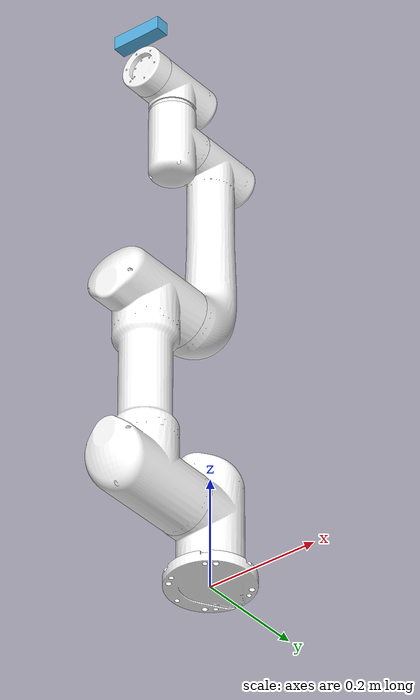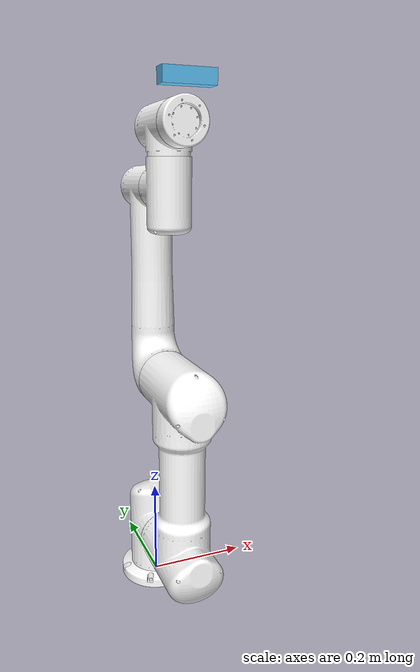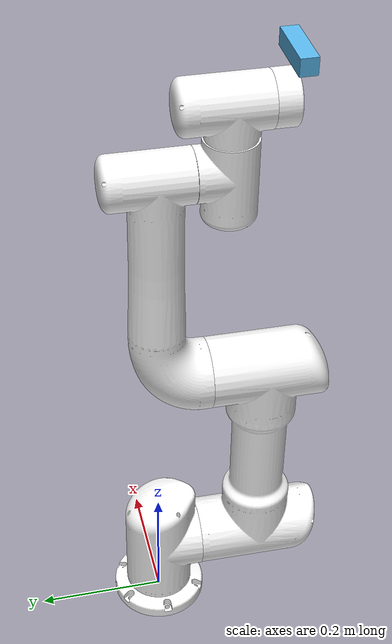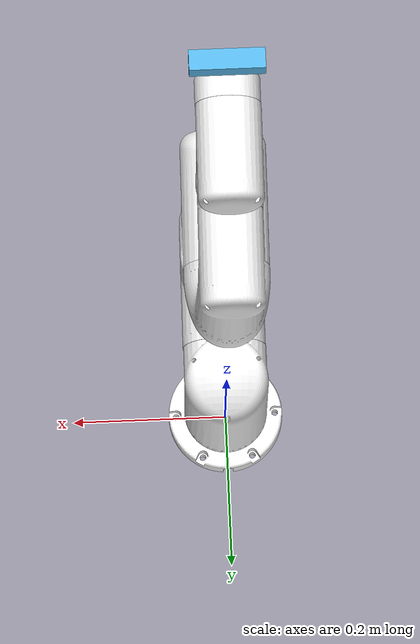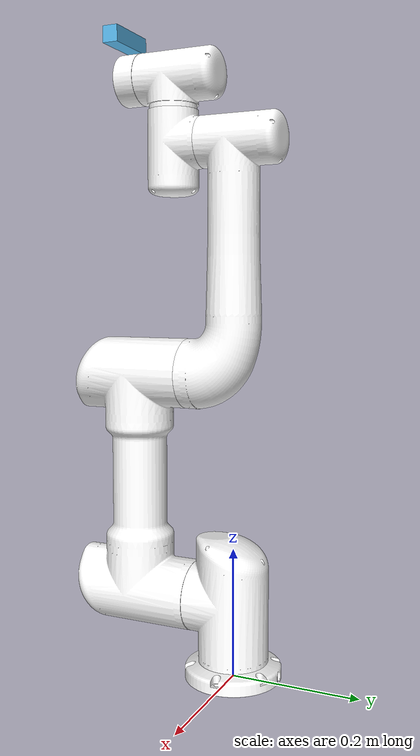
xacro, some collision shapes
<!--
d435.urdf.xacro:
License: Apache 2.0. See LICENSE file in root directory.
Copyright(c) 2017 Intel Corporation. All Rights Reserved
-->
<?xml version="1.0" encoding="utf-8"?>
<robot name="probot_c800"  xmlns:xacro="http://ros.org/wiki/xacro">
  <xacro:property name="M_PI" value="3.1415926536"/>
  <xacro:include filename="$(find probot_description)/urdf/PROBOT_C800/sensors/d435.urdf.xacro" />
  <xacro:include filename="$(find probot_description)/urdf/PROBOT_C800/sensors/realsense.gazebo.xacro"/>

  <link
    name="base_link">
    <inertial>
      <origin
        xyz="5.147E-06 -0.00046785 0.015896"
        rpy="0 0 0" />
      <mass
        value="0.468" />
      <inertia
        ixx="0.00059509"
        ixy="-1.4288E-07"
        ixz="2.849E-08"
        iyy="0.00060823"
        iyz="-2.5808E-06"
        izz="0.0011221" />
    </inertial>
    <visual>
      <origin
        xyz="0 0 0"
        rpy="0 0 0" />
      <geometry>
        <mesh
          filename="package://probot_description/meshes/PROBOT_C800/base_link.STL" />
      </geometry>
      <material
        name="">
        <color
          rgba="1 1 1 1" />
      </material>
    </visual>
    <collision>
      <origin
        xyz="0 0 0"
        rpy="0 0 0" />
      <geometry>
        <mesh
          filename="package://probot_description/meshes/PROBOT_C800/base_link.STL" />
      </geometry>
    </collision>
  </link>
  <link
    name="link_1">
    <inertial>
      <origin
        xyz="0.00965262287162855 0.000106882257560006 -0.0934671109139962"
        rpy="0 0 0" />
      <mass
        value="1.88922089243828" />
      <inertia
        ixx="0.00408865798627214"
        ixy="-5.96603151037548E-06"
        ixz="0.000373851909212829"
        iyy="0.00462847786874606"
        iyz="4.12539063355566E-06"
        izz="0.00336611341313754" />
    </inertial>
    <visual>
      <origin
        xyz="0 0 0"
        rpy="0 0 0" />
      <geometry>
        <mesh
          filename="package://probot_description/meshes/PROBOT_C800/link_1.STL" />
      </geometry>
      <material
        name="">
        <color
          rgba="1 1 1 1" />
      </material>
    </visual>
    <collision>
      <origin
        xyz="0 0 0"
        rpy="0 0 0" />
      <geometry>
        <mesh
          filename="package://probot_description/meshes/PROBOT_C800/link_1.STL" />
      </geometry>
    </collision>
  </link>
  <joint
    name="joint_1"
    type="revolute">
    <origin
      xyz="0 0 0.02685"
      rpy="${M_PI} 0 ${-M_PI/2}" />
    <parent
      link="base_link" />
    <child
      link="link_1" />
    <axis
      xyz="0 0 1" />
    <limit
      lower="-3"
      upper="3"
      effort="100"
      velocity="3" />
  </joint>
  <link
    name="link_2">
    <inertial>
      <origin
        xyz="0.0934750581217414 0.00103234502270023 -0.173879790200934"
        rpy="0 0 0" />
      <mass
        value="5.06786745806782" />
      <inertia
        ixx="0.0121779083694365"
        ixy="-2.80230067509799E-05"
        ixz="9.97468437098008E-10"
        iyy="0.0147149627140393"
        iyz="-8.00783289230579E-08"
        izz="0.00958972857755924" />
    </inertial>
    <visual>
      <origin
        xyz="0 0 0"
        rpy="0 0 0" />
      <geometry>
        <mesh
          filename="package://probot_description/meshes/PROBOT_C800/link_2.STL" />
      </geometry>
      <material
        name="">
        <color
          rgba="1 1 1 1" />
      </material>
    </visual>
    <collision>
      <origin
        xyz="0 0 0"
        rpy="0 0 0" />
      <geometry>
        <mesh
          filename="package://probot_description/meshes/PROBOT_C800/link_2.STL" />
      </geometry>
    </collision>
  </link>
  <joint
    name="joint_2"
    type="revolute">
    <origin
      xyz="0.06985 0.0 -0.09285"
      rpy="0 0 0" />
    <parent
      link="link_1" />
    <child
      link="link_2" />
    <axis
      xyz="1 0 0" />
    <limit
      lower="-3"
      upper="3"
      effort="100"
      velocity="3" />
  </joint>
  <link
    name="link_3">
    <inertial>
      <origin
        xyz="-0.0687118174770173 -0.000754378183272216 -0.185631913469604"
        rpy="0 0 0" />
      <mass
        value="2.47377025000813" />
      <inertia
        ixx="0.00663956391078891"
        ixy="-2.71624301134228E-06"
        ixz="-0.000251322412392862"
        iyy="0.00692970951632879"
        iyz="-2.96259292810681E-06"
        izz="0.00245054455125903" />
    </inertial>
    <visual>
      <origin
        xyz="0 0 0"
        rpy="0 0 0" />
      <geometry>
        <mesh
          filename="package://probot_description/meshes/PROBOT_C800/link_3.STL" />
      </geometry>
      <material
        name="">
        <color
          rgba="1 1 1 1" />
      </material>
    </visual>
    <collision>
      <origin
        xyz="0 0 0"
        rpy="0 0 0" />
      <geometry>
        <mesh
          filename="package://probot_description/meshes/PROBOT_C800/link_3.STL" />
      </geometry>
    </collision>
  </link>
  <joint
    name="joint_3"
    type="revolute">
    <origin
      xyz="0 0 -0.3484"
      rpy="0 0 0" />
    <parent
      link="link_2" />
    <child
      link="link_3" />
    <axis
      xyz="1 0 0" />
    <limit
      lower="-3"
      upper="3"
      effort="100"
      velocity="3" />
  </joint>
  <link
    name="link_4">
    <inertial>
      <origin
        xyz="1.42558891115018E-07 0.011406732342618 -0.041125104941559"
        rpy="0 0 0" />
      <mass
        value="0.695111684391091" />
      <inertia
        ixx="0.000790631110631163"
        ixy="1.14094804039212E-10"
        ixz="8.72089830829354E-10"
        iyy="0.000625170480739091"
        iyz="3.28279382060779E-12"
        izz="0.000711240090250443" />
    </inertial>
    <visual>
      <origin
        xyz="0 0 0"
        rpy="0 0 0" />
      <geometry>
        <mesh
          filename="package://probot_description/meshes/PROBOT_C800/link_4.STL" />
      </geometry>
      <material
        name="">
        <color
          rgba="1 1 1 1" />
      </material>
    </visual>
    <collision>
      <origin
        xyz="0 0 0"
        rpy="0 0 0" />
      <geometry>
        <mesh
          filename="package://probot_description/meshes/PROBOT_C800/link_4.STL" />
      </geometry>
    </collision>
  </link>
  <joint
    name="joint_4"
    type="revolute">
    <origin
      xyz="-0.01605 0.0 -0.3495"
      rpy="${M_PI/2} 0 ${-M_PI/2}" />
    <parent
      link="link_3" />
    <child
      link="link_4" />
    <axis
      xyz="0 0 1" />
    <limit
      lower="-3"
      upper="3"
      effort="100"
      velocity="3" />
  </joint>
  <link
    name="link_5">
    <inertial>
      <origin
        xyz="-0.0114844563632815 -0.000126834206554931 -0.0414064058202409"
        rpy="0 0 0" />
      <mass
        value="0.690365366275584" />
      <inertia
        ixx="0.000621780696658123"
        ixy="-1.82724165631366E-06"
        ixz="6.97185313514566E-12"
        iyy="0.000787203265227848"
        iyz="-1.46862677962704E-10"
        izz="0.000704470727358158" />
    </inertial>
    <visual>
      <origin
        xyz="0 0 0"
        rpy="0 0 0" />
      <geometry>
        <mesh
          filename="package://probot_description/meshes/PROBOT_C800/link_5.STL" />
      </geometry>
      <material
        name="">
        <color
          rgba="1 1 1 1" />
      </material>
    </visual>
    <collision>
      <origin
        xyz="0 0 0"
        rpy="0 0 0" />
      <geometry>
        <mesh
          filename="package://probot_description/meshes/PROBOT_C800/link_5.STL" />
      </geometry>
    </collision>
  </link>
  <joint
    name="joint_5"
    type="revolute">
    <origin
      xyz="0 -0.0541 -0.0464"
      rpy="${-M_PI/2} ${M_PI/2} 0" />
    <parent
      link="link_4" />
    <child
      link="link_5" />
    <axis
      xyz="0 0 1" />
    <limit
      lower="-3"
      upper="3"
      effort="100"
      velocity="3" />
  </joint>
  <link
    name="link_6">
    <inertial>
      <origin
        xyz="0.014970141556978 0.000165329680690855 5.42196176844811E-09"
        rpy="0 0 0" />
      <mass
        value="0.138913647701422" />
      <inertia
        ixx="0.000114113868764739"
        ixy="5.037705828088E-07"
        ixz="1.27793184454972E-11"
        iyy="6.850486862405E-05"
        iyz="-1.06418612094514E-09"
        izz="6.85002551423014E-05" />
    </inertial>
    <visual>
      <origin
        xyz="0 0 0"
        rpy="0 0 0" />
      <geometry>
        <mesh
          filename="package://probot_description/meshes/PROBOT_C800/link_6.STL" />
      </geometry>
      <material
        name="">
        <color
          rgba="1 1 1 1" />
      </material>
    </visual>
    <collision>
      <origin
        xyz="0 0 0"
        rpy="0 0 0" />
      <geometry>
        <mesh
          filename="package://probot_description/meshes/PROBOT_C800/link_6.STL" />
      </geometry>
    </collision>
  </link>
  <joint
    name="joint_6"
    type="revolute">
    <origin
      xyz="0.0501 0 -0.0464"
      rpy="0 0 0" />
    <parent
      link="link_5" />
    <child
      link="link_6" />
    <axis
      xyz="-1 0 0" />
    <limit
      lower="-3"
      upper="3"
      effort="100"
      velocity="3" />
  </joint>

  <link name="tool0"/>
  <joint name="joint_tool0" type="fixed">
    <origin xyz="0.03328 0 0" rpy="${-M_PI} 0 ${-M_PI/2}" />
    <parent link="link_6" />
    <child link="tool0" />
  </joint>

  <sensor_d435 parent="tool0">
    <origin xyz="0 0 0.05" rpy="0 0 ${-M_PI/2}"/>
  </sensor_d435>

  <!-- Transmissions for ROS Control -->
  <xacro:macro name="transmission_block" params="joint_name">
    <transmission name="tran1">
      <type>transmission_interface/SimpleTransmission</type>
      <joint name="${joint_name}">
        <hardwareInterface>hardware_interface/PositionJointInterface</hardwareInterface>
      </joint>
      <actuator name="motor1">
        <hardwareInterface>hardware_interface/PositionJointInterface</hardwareInterface>
        <mechanicalReduction>1</mechanicalReduction>
      </actuator>
    </transmission>
  </xacro:macro>

  <xacro:transmission_block joint_name="joint_1"/>
  <xacro:transmission_block joint_name="joint_2"/>
  <xacro:transmission_block joint_name="joint_3"/>
  <xacro:transmission_block joint_name="joint_4"/>
  <xacro:transmission_block joint_name="joint_5"/>
  <xacro:transmission_block joint_name="joint_6"/>

  <!-- ros_control plugin -->
  <gazebo>
    <plugin name="gazebo_ros_control" filename="libgazebo_ros_control.so">
      <robotNamespace>/</robotNamespace>
      <robotSimType>gazebo_ros_control/DefaultRobotHWSim</robotSimType>
      <legacyModeNS>true</legacyModeNS>
    </plugin>
  </gazebo>
</robot>

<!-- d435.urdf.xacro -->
<robot name="sensor_d435" xmlns:xacro="http://ros.org/wiki/xacro">
  <!-- Includes -->
  <material name="aluminum">
    <color rgba="0.5 0.5 0.5 1"/>
  </material>

  <xacro:macro name="sensor_d435" params="parent *origin name:=camera">
    <xacro:property name="M_PI" value="3.1415926535897931" />

    <!-- The following values are approximate, and the camera node
     publishing TF values with actual calibrated camera extrinsic values -->
    <xacro:property name="d435_cam_depth_to_infra1_offset" value="0.0"/>
    <xacro:property name="d435_cam_depth_to_infra2_offset" value="-0.050"/>
    <xacro:property name="d435_cam_depth_to_color_offset" value="0.015"/>

    <!-- The following values model the aluminum peripherial case for the
  	D435 camera, with the camera joint represented by the actual
  	peripherial camera tripod mount -->
    <xacro:property name="d435_cam_width" value="0.090"/>
    <xacro:property name="d435_cam_height" value="0.025"/>
    <xacro:property name="d435_cam_depth" value="0.02505"/>
    <xacro:property name="d435_cam_mount_from_center_offset" value="0.0149"/>

    <!-- The following offset is relative the the physical D435 camera peripherial
  	camera tripod mount -->
    <xacro:property name="d435_cam_depth_px" value="${d435_cam_mount_from_center_offset}"/>
    <xacro:property name="d435_cam_depth_py" value="0.0175"/>
    <xacro:property name="d435_cam_depth_pz" value="${d435_cam_height/2}"/>

    <!-- camera body, with origin at bottom screw mount -->
    <joint name="${name}_joint" type="fixed">
      <xacro:insert_block name="origin" />
      <parent link="${parent}"/>
      <child link="${name}_bottom_screw_frame" />
    </joint>
    <link name="${name}_bottom_screw_frame"/>

    <joint name="${name}_link_joint" type="fixed">
      <origin xyz="0 ${d435_cam_depth_py} ${d435_cam_depth_pz}" rpy="0 0 0"/>
      <parent link="${name}_bottom_screw_frame"/>
      <child link="${name}_link" />
    </joint>

    <link name="${name}_link">
      <visual>
        <origin xyz="${d435_cam_mount_from_center_offset} ${-d435_cam_depth_py} 0" rpy="${M_PI/2} 0 ${M_PI/2}"/>
        <geometry>
	        <mesh filename="package://probot_description/meshes/PROBOT_C800/sensors/d435.dae" />
        </geometry>
      </visual>
      <collision>
        <origin xyz="0 ${-d435_cam_depth_py} 0" rpy="0 0 0"/>
        <geometry>
          <box size="${d435_cam_depth} ${d435_cam_width} ${d435_cam_height}"/>
        </geometry>
      </collision>
      <inertial>
        <!-- The following are not reliable values, and should not be used for modeling -->
        <mass value="0.564" />
        <origin xyz="0 0 0" />
        <inertia ixx="0.003881243" ixy="0.0" ixz="0.0" iyy="0.000498940" iyz="0.0" izz="0.003879257" />
      </inertial>
    </link>

    <!-- Use the nominal extrinsics between camera frames if the calibrated extrinsics aren't being published. e.g. running the device in simulation  -->

      <!-- camera depth joints and links -->
      <joint name="${name}_depth_joint" type="fixed">
        <origin xyz="0 0 0" rpy="0 0 0"/>
        <parent link="${name}_link"/>
        <child link="${name}_depth_frame" />
      </joint>
      <link name="${name}_depth_frame"/>

      <joint name="${name}_depth_optical_joint" type="fixed">
        <origin xyz="0 0 0" rpy="${-M_PI/2} 0 ${-M_PI/2}" />
        <parent link="${name}_depth_frame" />
        <child link="${name}_depth_optical_frame" />
      </joint>
      <link name="${name}_depth_optical_frame"/>

      <!-- camera left IR joints and links -->
      <joint name="${name}_infra1_joint" type="fixed">
        <origin xyz="0 ${d435_cam_depth_to_infra1_offset} 0" rpy="0 0 0" />
        <parent link="${name}_link" />
        <child link="${name}_infra1_frame" />
      </joint>
      <link name="${name}_infra1_frame"/>

      <joint name="${name}_infra1_optical_joint" type="fixed">
        <origin xyz="0 0 0" rpy="${-M_PI/2} 0 ${-M_PI/2}" />
        <parent link="${name}_infra1_frame" />
        <child link="${name}_infra1_optical_frame" />
      </joint>
      <link name="${name}_infra1_optical_frame"/>

      <!-- camera right IR joints and links -->
      <joint name="${name}_infra2_joint" type="fixed">
        <origin xyz="0 ${d435_cam_depth_to_infra2_offset} 0" rpy="0 0 0" />
        <parent link="${name}_link" />
        <child link="${name}_infra2_frame" />
      </joint>
      <link name="${name}_infra2_frame"/>

      <joint name="${name}_infra2_optical_joint" type="fixed">
        <origin xyz="0 0 0" rpy="${-M_PI/2} 0 ${-M_PI/2}" />
        <parent link="${name}_infra2_frame" />
        <child link="${name}_infra2_optical_frame" />
      </joint>
      <link name="${name}_infra2_optical_frame"/>

      <!-- camera color joints and links -->
      <joint name="${name}_color_joint" type="fixed">
        <origin xyz="0 ${d435_cam_depth_to_color_offset} 0" rpy="0 0 0" />
        <parent link="${name}_link" />
        <child link="${name}_color_frame" />
      </joint>
      <link name="${name}_color_frame"/>

      <joint name="${name}_color_optical_joint" type="fixed">
        <origin xyz="0 0 0" rpy="${-M_PI/2} 0 ${-M_PI/2}" />
        <parent link="${name}_color_frame" />
        <child link="${name}_color_optical_frame" />
      </joint>
      <link name="${name}_color_optical_frame"/>

  </xacro:macro>
</robot>
